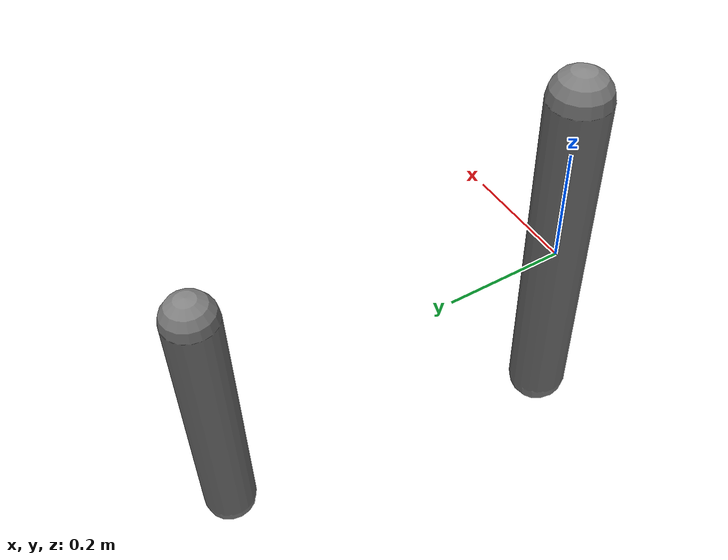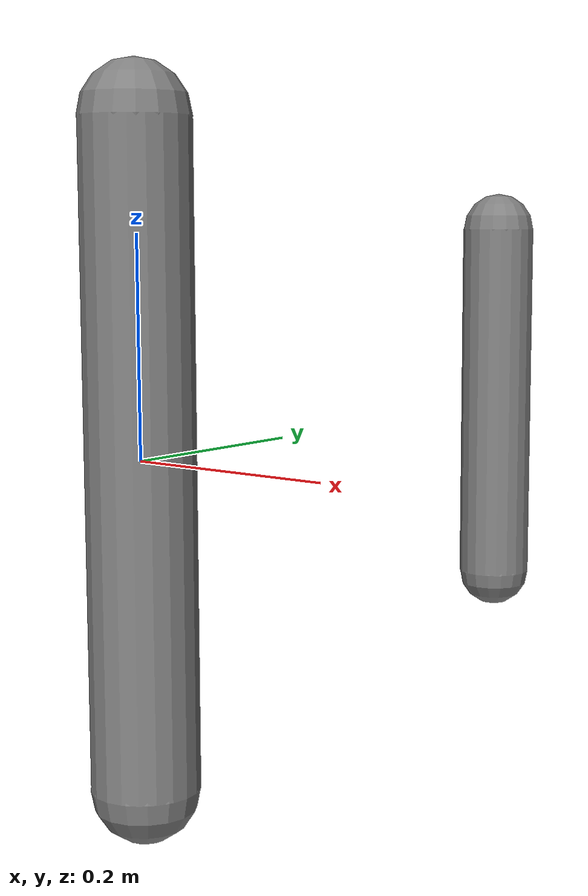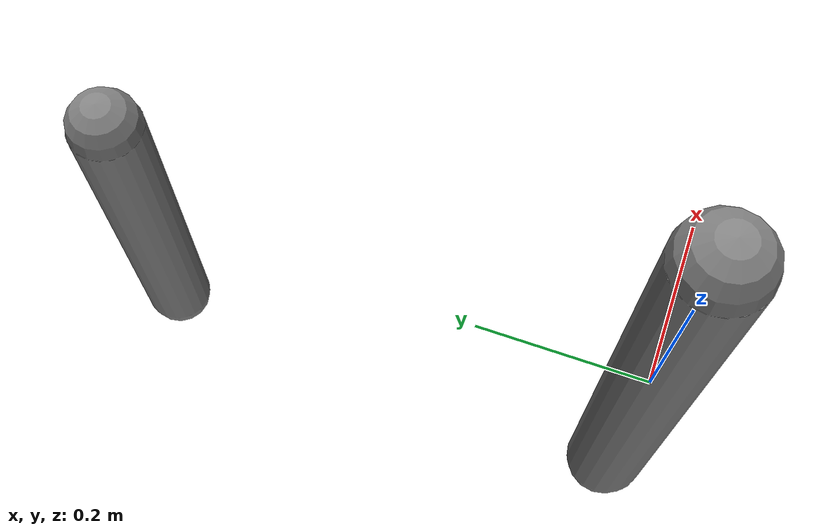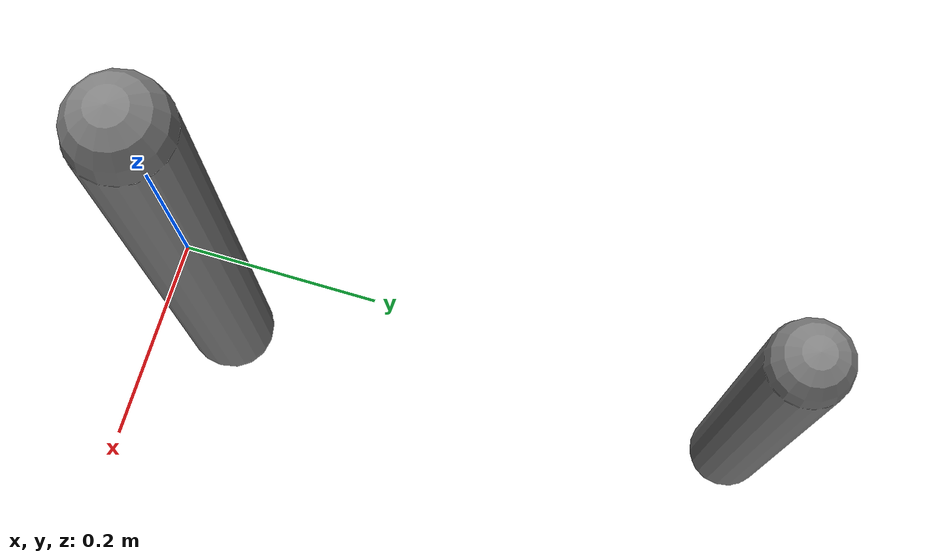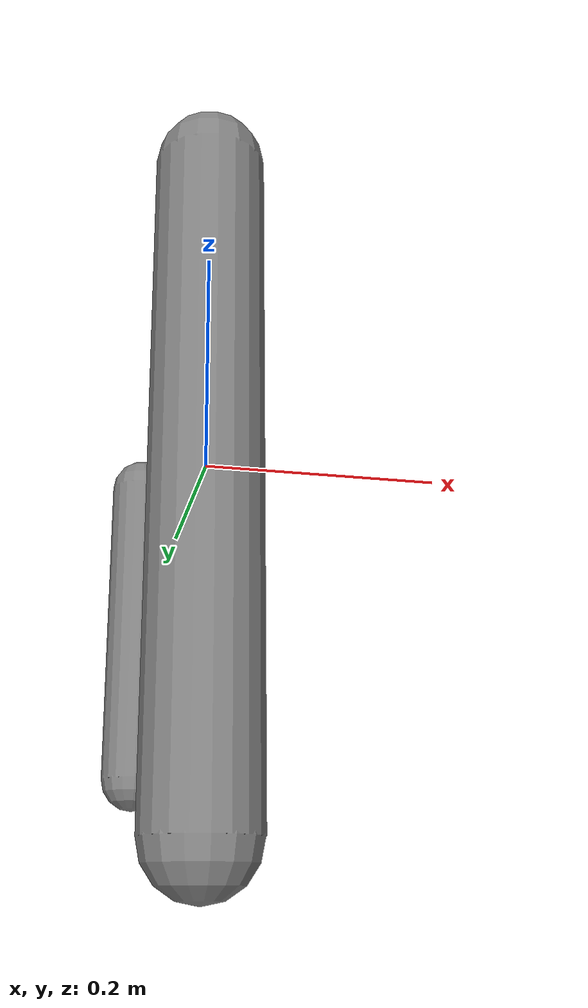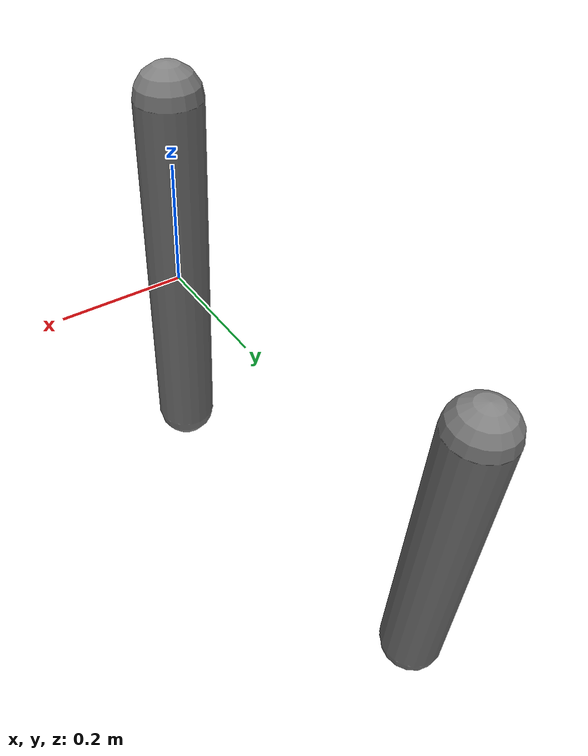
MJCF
<mujoco model="friction_loss">
            <option gravity="0 0 -9.81" timestep="0.001" solver="Newton"/>
            <worldbody>
                <body name="arm" pos="0 0 0">
                    <joint type="hinge" axis="0 0 1" frictionloss="1.0"/>
                    <geom type="capsule" size="0.05 0.3" mass="1.0"/>
                    <body name="forearm" pos="0 0.6 0">
                        <joint type="hinge" axis="0 0 1" frictionloss="0.5"/>
                        <geom type="capsule" size="0.04 0.2" mass="0.5"/>
                    </body>
                </body>
            </worldbody>
        </mujoco>
